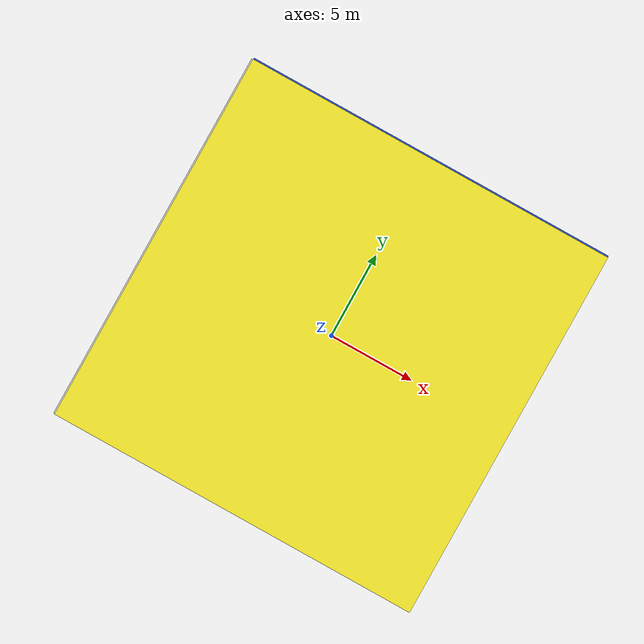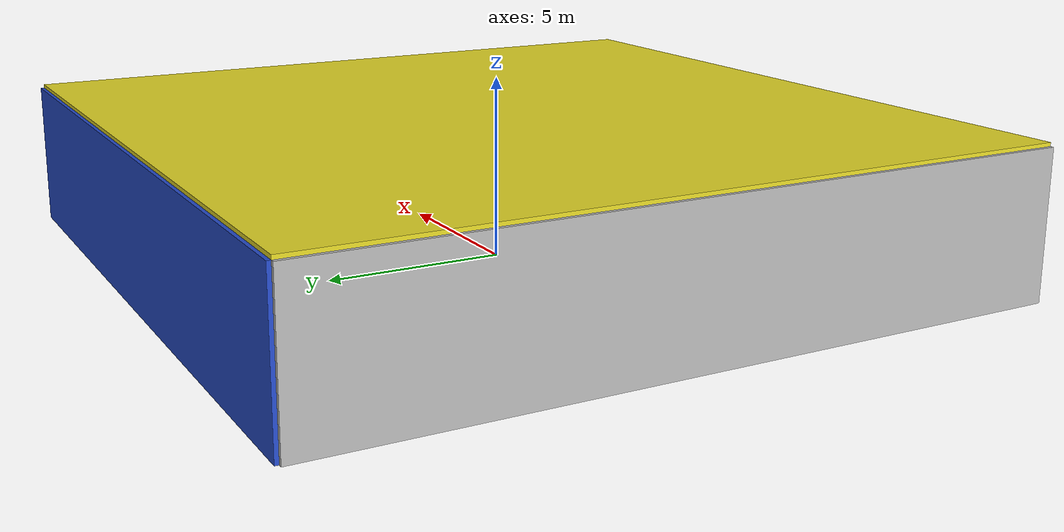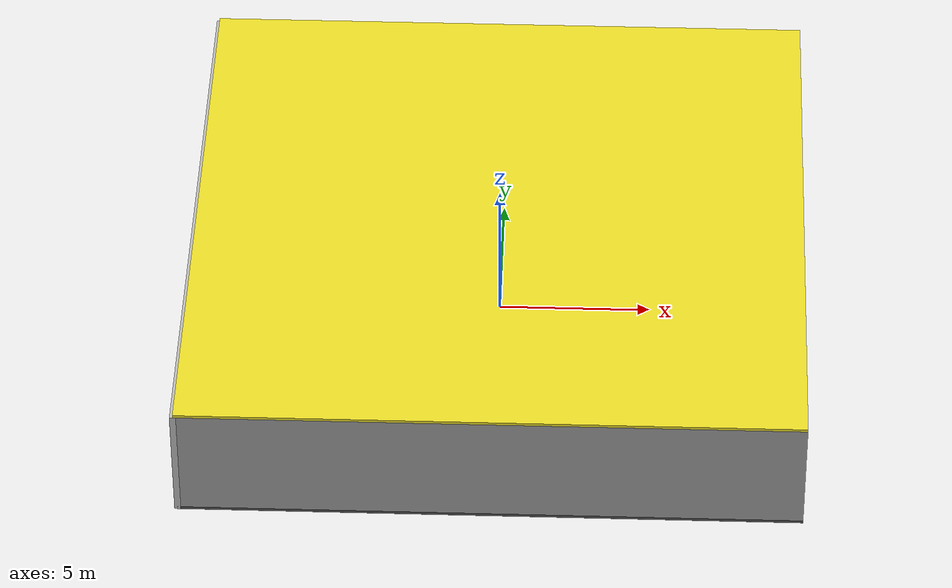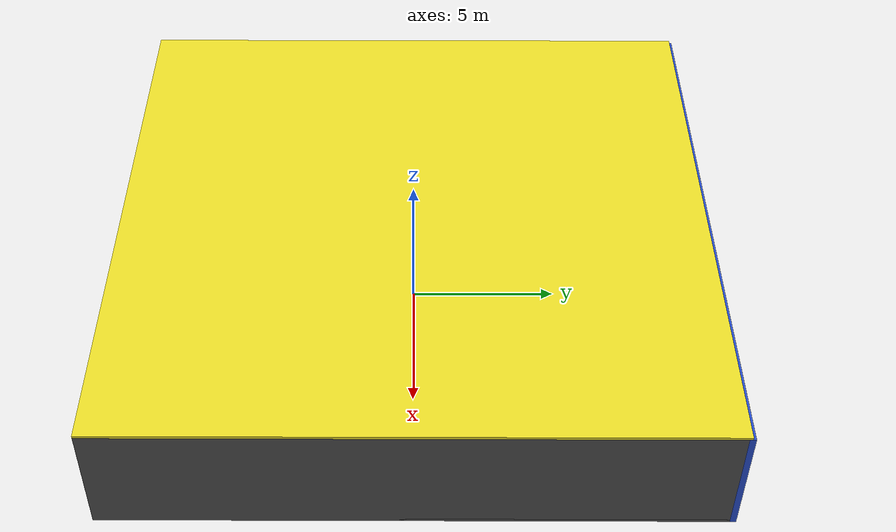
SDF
<sdf version="1.4">
 <world name="default">
  <physics type="ode">
   <max_step_size>0.001</max_step_size>
   <real_time_factor>1</real_time_factor>
   <real_time_update_rate>1000</real_time_update_rate>
   <gravity>0 0 -9.8</gravity>
  </physics>
  <scene><ambient>0.4 0.4 0.4 1</ambient><background>0.7 0.7 0.7 1</background><shadows>1</shadows></scene>
  <model name="Surrounding">
   <static>1</static>
   <link name="Ceiling">
    <collision name="Ceiling_Collision"><geometry><box><size>20 20 0.1</size></box></geometry></collision>
    <visual name="Ceiling_Visual">
     <geometry><box><size>20 20 0.1</size></box></geometry>
     <material>
      <script><uri>file://media/materials/scripts/gazebo.material</uri><name>Gazebo/Yellow</name></script>
     </material>
    </visual>
    <pose>0 0 4.05 0 0 0</pose>
   </link>
   <link name="Wall_South">
    <collision name="Wall_South_Collision">
     <geometry><box><size>20 0 4</size></box></geometry>
     <pose>0 0 2 0 -0 0</pose>
    </collision>
    <visual name="Wall_South_Visual">
     <pose>0 0 2 0 -0 0</pose>
     <geometry><box><size>20 0 4</size></box></geometry>
     <material>
      <script><uri>file://media/materials/scripts/gazebo.material</uri><name>Gazebo/Grey</name></script>
     </material>
    </visual>
    <velocity_decay><linear>0</linear><angular>0</angular></velocity_decay>
    <pose>0 -10 0 0 -0 0</pose>
   </link>
   <link name="Wall_East">
    <collision name="Wall_21_Collision">
     <geometry><box><size>20 0 4</size></box></geometry>
     <pose>0 0 2 0 -0 0</pose>
    </collision>
    <visual name="Wall_21_Visual">
     <pose>0 0 2 0 -0 0</pose>
     <geometry><box><size>20 0 4</size></box></geometry>
     <material>
      <script><uri>file://media/materials/scripts/gazebo.material</uri><name>Gazebo/DarkGrey</name></script>
     </material>
    </visual>
    <velocity_decay><linear>0</linear><angular>0</angular></velocity_decay>
    <pose>10 0 0 0 -0 1.5708</pose>
   </link>
   <link name="Wall_North">
    <collision name="Wall_22_Collision">
     <geometry><box><size>20 0.2 4</size></box></geometry>
     <pose>0 0 2 0 -0 0</pose>
    </collision>
    <visual name="Wall_22_Visual">
     <pose>0 0 2 0 -0 0</pose>
     <geometry><box><size>20 0.2 4</size></box></geometry>
     <material>
      <script><uri>file://media/materials/scripts/gazebo.material</uri><name>Gazebo/BlueLaser</name></script>
     </material>
    </visual>
    <velocity_decay><linear>0</linear><angular>0</angular></velocity_decay>
    <pose>0 10 0 0 -0 0</pose>
   </link>
   <link name="Wall_West">
    <collision name="Wall_23_Collision">
     <geometry><box><size>20 0.2 4</size></box></geometry>
     <pose>0 0 2 0 -0 0</pose>
    </collision>
    <visual name="Wall_23_Visual">
     <pose>0 0 2 0 -0 0</pose>
     <geometry><box><size>20 0.2 4</size></box></geometry>
     <material>
      <script><uri>file://media/materials/scripts/gazebo.material</uri><name>Gazebo/LightOff</name></script>
     </material>
    </visual>
    <velocity_decay><linear>0</linear><angular>0</angular></velocity_decay>
    <pose>-10 0 0 0 0 -1.5708</pose>
   </link>
   <link name="Ground_link">
    <collision name="collision">
     <pose>0 0 .05 0 -0 0</pose>
     <geometry><box><size>20 20 0.1</size></box></geometry>
    </collision>
    <visual name="visual">
     <pose>0 0 .05 0 -0 0</pose>
     <geometry><box><size>20 20 0.1</size></box></geometry>
     <material>
      <script><uri>file://media/materials/scripts/gazebo.material</uri><name>Gazebo/DarkGrey</name></script>
     </material>
    </visual>
   </link>
   <static>1</static>
  </model>
  <spherical_coordinates>
   <surface_model>EARTH_WGS84</surface_model>
   <latitude_deg>0</latitude_deg>
   <longitude_deg>0</longitude_deg>
   <elevation>0</elevation>
   <heading_deg>0</heading_deg>
  </spherical_coordinates>
  <light name="lightball_0" type="diffuse">
   <diffuse>0.8 0.8 0.8 1</diffuse>
   <specular>0.2 0.2 0.2 1</specular>
   <attenuation>
    <range>100</range>
    <constant>0.7</constant>
    <linear>0.01</linear>
    <quadratic>0.001</quadratic>
   </attenuation>
   <direction>-0.5 0.1 -0.9</direction>
   <pose>-8.64366692392 -6.89051483711 3.60052375396 0 0 0</pose>
  </light>
  <light name="lightball_1" type="diffuse">
   <diffuse>0.8 0.8 0.8 1</diffuse>
   <specular>0.2 0.2 0.2 1</specular>
   <attenuation>
    <range>100</range>
    <constant>0.7</constant>
    <linear>0.01</linear>
    <quadratic>0.001</quadratic>
   </attenuation>
   <direction>-0.5 0.1 -0.9</direction>
   <pose>7.70052214286 4.50150855855 3.1657430376 0 0 0</pose>
  </light>
  <light name="lightball_2" type="diffuse">
   <diffuse>0.8 0.8 0.8 1</diffuse>
   <specular>0.2 0.2 0.2 1</specular>
   <attenuation>
    <range>100</range>
    <constant>0.7</constant>
    <linear>0.01</linear>
    <quadratic>0.001</quadratic>
   </attenuation>
   <direction>-0.5 0.1 -0.9</direction>
   <pose>6.28812086465 -6.44477917797 1.89427997999 0 0 0</pose>
  </light>
  <include>
   <uri>model://construction_cone</uri>
   <pose>-7.12931998122 4.18286251496 0 0 0 1.66791184871</pose>
  </include>
  <include><uri>model://cabinet</uri><pose>-3.89388058395 -4.16892212913 0 0 0 1.95500879092</pose></include>
  <include><uri>model://cabinet</uri><pose>-4.75887965932 7.09110859876 0 0 0 3.13615174453</pose></include>
  <include><uri>model://table</uri><pose>4.00007480059 -4.43424549057 0 0 0 0.703426132221</pose></include>
  <include><uri>model://cabinet</uri><pose>6.9788180402 5.08296714516 0 0 0 2.89968655937</pose></include>
  <include>
   <uri>model://textured_shapes</uri>
   <pose>8.13505554257 6.94399490722 0 0 0 2.62532264347</pose>
  </include>
 </world>
</sdf>

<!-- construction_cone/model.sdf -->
<sdf version="1.5">
  <model name="Construction Cone">
    <link name="link">
      <collision name="collision">
        <geometry>
          <mesh>
            <scale>10 10 10</scale>
            <uri>file://isr-testbed/construction_cone/meshes/construction_cone.dae</uri>
          </mesh>
        </geometry>
      </collision>
      <visual name="visual">
        <geometry>
          <mesh>
            <scale>10 10 10</scale>
            <uri>file://isr-testbed/construction_cone/meshes/construction_cone.dae</uri>
          </mesh>
        </geometry>
      </visual>
    </link>
  </model>
</sdf>

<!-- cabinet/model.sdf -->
<sdf version="1.5">
  <model name="cabinet">
    <static>true</static>
    <link name="cabinet_bottom_plate">
      <inertial>
        <pose>0 0 -1 0 0 0</pose>
        <inertia>
          <ixx>2.050000</ixx>
          <ixy>0</ixy>
          <ixz>0</ixz>
          <iyy>2.050000</iyy>
          <iyz>0</iyz>
          <izz>2.050000</izz>
        </inertia>
        <mass>25.000000</mass>
      </inertial>
      <collision name="cabinet_bottom_plate_geom">
        <pose>0 0 0.010000 0 0 0</pose>
        <geometry>
          <box>
            <size>0.450000 0.450000 0.020000</size>
          </box>
        </geometry>
      </collision>
      <visual name="cabinet_bottom_plate_geom_visual">
        <pose>0 0 0.010000 0 0 0</pose>
        <geometry>
          <box>
            <size>0.450000 0.450000 0.020000</size>
          </box>
        </geometry>
        <material>
          <script>
            <uri>model://media/materials/scripts/gazebo.material</uri>
            <name>Gazebo/Wood</name>
          </script>
        </material>
      </visual>
      <collision name="cabinet_bottom_plate_geom_cabinet_back_plate">
        <pose>0.235000 0 0.510000 0 0 0</pose>
        <geometry>
          <box>
            <size>0.020000 0.450000 1.020000</size>
          </box>
        </geometry>
      </collision>
      <visual name="cabinet_bottom_plate_geom_cabinet_back_plate_visual">
        <pose>0.235000 0 0.510000 0 0 0</pose>
        <geometry>
          <box>
            <size>0.020000 0.450000 1.020000</size>
          </box>
        </geometry>
        <material>
          <script>
            <uri>model://media/materials/scripts/gazebo.material</uri>
            <name>Gazebo/Wood</name>
          </script>
        </material>
      </visual>
      <collision name="cabinet_bottom_plate_geom_cabinet_left_plate">
        <pose>0 0.235000 0.510000 0 0 0</pose>
        <geometry>
          <box>
            <size>0.450000 0.020000 1.020000</size>
          </box>
        </geometry>
      </collision>
      <visual name="cabinet_bottom_plate_geom_cabinet_left_plate_visual">
        <pose>0 0.235000 0.510000 0 0 0</pose>
        <geometry>
          <box>
            <size>0.450000 0.020000 1.020000</size>
          </box>
        </geometry>
        <material>
          <script>
            <uri>model://media/materials/scripts/gazebo.material</uri>
            <name>Gazebo/Wood</name>
          </script>
        </material>
      </visual>
      <collision name="cabinet_bottom_plate_geom_cabinet_middle_plate">
        <pose>0 0 0.510000 0 0 0</pose>
        <geometry>
          <box>
            <size>0.450000 0.450000 0.020000</size>
          </box>
        </geometry>
      </collision>
      <visual name="cabinet_bottom_plate_geom_cabinet_middle_plate_visual">
        <pose>0 0 0.510000 0 0 0</pose>
        <geometry>
          <box>
            <size>0.450000 0.450000 0.020000</size>
          </box>
        </geometry>
        <material>
          <script>
            <uri>model://media/materials/scripts/gazebo.material</uri>
            <name>Gazebo/Wood</name>
          </script>
        </material>
      </visual>
      <collision name="cabinet_bottom_plate_geom_cabinet_right_plate">
        <pose>0 -0.235000 0.510000 0 0 0</pose>
        <geometry>
          <box>
            <size>0.450000 0.020000 1.020000</size>
          </box>
        </geometry>
      </collision>
      <visual name="cabinet_bottom_plate_geom_cabinet_right_plate_visual">
        <pose>0 -0.235000 0.510000 0 0 0</pose>
        <geometry>
          <box>
            <size>0.450000 0.020000 1.020000</size>
          </box>
        </geometry>
        <material>
          <script>
            <uri>model://media/materials/scripts/gazebo.material</uri>
            <name>Gazebo/Wood</name>
          </script>
        </material>
      </visual>
      <collision name="cabinet_bottom_plate_geom_cabinet_top_plate">
        <pose>0 0 1.010000 0 0 0</pose>
        <geometry>
          <box>
            <size>0.450000 0.450000 0.020000</size>
          </box>
        </geometry>
      </collision>
      <visual name="cabinet_bottom_plate_geom_cabinet_top_plate_visual">
        <pose>0 0 1.010000 0 0 0</pose>
        <geometry>
          <box>
            <size>0.450000 0.450000 0.020000</size>
          </box>
        </geometry>
        <material>
          <script>
            <uri>model://media/materials/scripts/gazebo.material</uri>
            <name>Gazebo/Wood</name>
          </script>
        </material>
      </visual>
    </link>
  </model>
</sdf>

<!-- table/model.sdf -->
<sdf version="1.5">
  <model name="table">
    <static>true</static>
    <link name="link">
      <collision name="surface">
        <pose>0 0 1.0 0 0 0</pose>
        <geometry>
          <box>
            <size>1.5 0.8 0.03</size>
          </box>
        </geometry>
        <surface>
          <friction>
            <ode>
              <mu>0.6</mu>
              <mu2>0.6</mu2>
            </ode>
          </friction>
        </surface>
      </collision>
      <visual name="visual1">
        <pose>0 0 1.0 0 0 0</pose>
        <geometry>
          <box>
            <size>1.5 0.8 0.03</size>
          </box>
        </geometry>
        <material>
          <script>
            <uri>model://media/materials/scripts/gazebo.material</uri>
            <name>Gazebo/Wood</name>
          </script>
        </material>
      </visual>
      <collision name="front_left_leg">
        <pose>0.68 0.38 0.5 0 0 0</pose>
        <geometry>
          <cylinder>
            <radius>0.02</radius>
            <length>1.0</length>
          </cylinder>
        </geometry>
      </collision>
      <visual name="front_left_leg">
        <pose>0.68 0.38 0.5 0 0 0</pose>
        <geometry>
          <cylinder>
            <radius>0.02</radius>
            <length>1.0</length>
          </cylinder>
        </geometry>
        <material>
          <script>
            <uri>model://media/materials/scripts/gazebo.material</uri>
            <name>Gazebo/Grey</name>
          </script>
        </material>
      </visual>
      <collision name="front_right_leg">
        <pose>0.68 -0.38 0.5 0 0 0</pose>
        <geometry>
          <cylinder>
            <radius>0.02</radius>
            <length>1.0</length>
          </cylinder>
        </geometry>
      </collision>
      <visual name="front_right_leg">
        <pose>0.68 -0.38 0.5 0 0 0</pose>
        <geometry>
          <cylinder>
            <radius>0.02</radius>
            <length>1.0</length>
          </cylinder>
        </geometry>
        <material>
          <script>
            <uri>model://media/materials/scripts/gazebo.material</uri>
            <name>Gazebo/Grey</name>
          </script>
        </material>
      </visual>
      <collision name="back_right_leg">
        <pose>-0.68 -0.38 0.5 0 0 0</pose>
        <geometry>
          <cylinder>
            <radius>0.02</radius>
            <length>1.0</length>
          </cylinder>
        </geometry>
      </collision>
      <visual name="back_right_leg">
        <pose>-0.68 -0.38 0.5 0 0 0</pose>
        <geometry>
          <cylinder>
            <radius>0.02</radius>
            <length>1.0</length>
          </cylinder>
        </geometry>
        <material>
          <script>
            <uri>model://media/materials/scripts/gazebo.material</uri>
            <name>Gazebo/Grey</name>
          </script>
        </material>
      </visual>
      <collision name="back_left_leg">
        <pose>-0.68 0.38 0.5 0 0 0</pose>
        <geometry>
          <cylinder>
            <radius>0.02</radius>
            <length>1.0</length>
          </cylinder>
        </geometry>
      </collision>
      <visual name="back_left_leg">
        <pose>-0.68 0.38 0.5 0 0 0</pose>
        <geometry>
          <cylinder>
            <radius>0.02</radius>
            <length>1.0</length>
          </cylinder>
        </geometry>
        <material>
          <script>
            <uri>model://media/materials/scripts/gazebo.material</uri>
            <name>Gazebo/Grey</name>
          </script>
        </material>
      </visual>
    </link>
  </model>
</sdf>

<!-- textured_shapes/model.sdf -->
<sdf version="1.6">
  <model name="textured_shapes">
    <pose>0 0 0.5 0 0 0</pose>
    <link name="box">
      <pose>0 -1.5 0 0 0 0</pose>
      <collision name="collision">
        <geometry>
          <box>
            <size>1 1 1</size>
          </box>
        </geometry>
      </collision>
      <visual name="visual">
        <geometry>
          <box>
            <size>1 1 1</size>
          </box>
        </geometry>
        <material>
          <script>
            <uri>model://../model_source/models/textured_shapes/materials/scripts</uri>
            <uri>model://../model_source/models/textured_shapes/materials/textures</uri>
            <name>TexturedShape/Squares</name>
          </script>
        </material>
      </visual>
    </link>
    <link name="sphere">
      <collision name="collision">
        <geometry>
          <sphere>
            <radius>0.5</radius>
          </sphere>
        </geometry>
      </collision>
      <visual name="visual">
        <geometry>
          <sphere>
            <radius>0.5</radius>
          </sphere>
        </geometry>
        <material>
          <script>
            <uri>model://../model_source/models/textured_shapes/materials/scripts</uri>
            <uri>model://../model_source/models/textured_shapes/materials/textures</uri>
            <name>TexturedShape/Squares</name>
          </script>
        </material>
      </visual>
    </link>
    <link name="cylinder">
      <pose>0 1.5 0 0 0 0</pose>
      <collision name="collision">
        <geometry>
          <cylinder>
            <radius>0.5</radius>
            <length>1</length>
          </cylinder>
        </geometry>
      </collision>
      <visual name="visual">
        <geometry>
          <cylinder>
            <radius>0.5</radius>
            <length>1</length>
          </cylinder>
        </geometry>
        <material>
          <script>
            <uri>model://../model_source/models/textured_shapes/materials/scripts</uri>
            <uri>model://../model_source/models/textured_shapes/materials/textures</uri>
            <name>TexturedShape/Squares</name>
          </script>
        </material>
      </visual>
    </link>
  </model>
</sdf>
